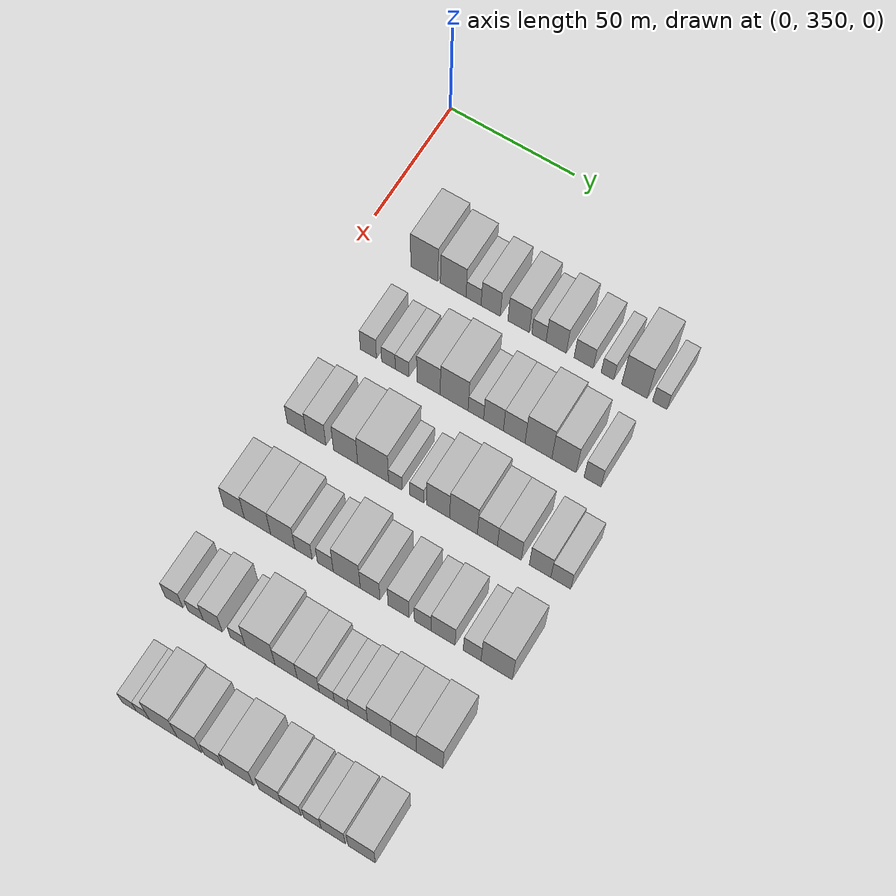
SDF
<sdf version="1.6">
 <world name="default">
  <model name="building_96">
   <static>1</static>
   <pose>50.0000 376.0835 0 0.000000 0.000000 0.000000</pose>
   <link name="link">
    <pose>0 0 12.00 0 0 0</pose>
    <collision name="collision"><geometry><box><size>20.0000 10.8142 24.0000</size></box></geometry></collision>
    <visual name="visual">
     <cast_shadows>0</cast_shadows>
     <geometry><box><size>20.0000 10.8142 24.0000</size></box></geometry>
     <material>
      <script>
       <uri>model://HANNAS_wall/materials/scripts</uri>
       <uri>model://HANNAS_wall/materials/textures</uri>
       <name>vrc/HANNAS_wall</name>
      </script>
     </material>
    </visual>
   </link>
  </model>
  <model name="building_97">
   <static>1</static>
   <pose>50.0000 387.5671 0 0.000000 0.000000 0.000000</pose>
   <link name="link">
    <pose>0 0 10.50 0 0 0</pose>
    <collision name="collision"><geometry><box><size>20.0000 10.1531 21.0000</size></box></geometry></collision>
    <visual name="visual">
     <cast_shadows>0</cast_shadows>
     <geometry><box><size>20.0000 10.1531 21.0000</size></box></geometry>
     <material>
      <script>
       <uri>model://HANNAS_wall/materials/scripts</uri>
       <uri>model://HANNAS_wall/materials/textures</uri>
       <name>vrc/HANNAS_wall</name>
      </script>
     </material>
    </visual>
   </link>
  </model>
  <model name="building_98">
   <static>1</static>
   <pose>50.0000 395.6149 0 0.000000 0.000000 0.000000</pose>
   <link name="link">
    <pose>0 0 6.00 0 0 0</pose>
    <collision name="collision"><geometry><box><size>20.0000 5.9425 12.0000</size></box></geometry></collision>
    <visual name="visual">
     <cast_shadows>0</cast_shadows>
     <geometry><box><size>20.0000 5.9425 12.0000</size></box></geometry>
     <material>
      <script>
       <uri>model://HANNAS_wall/materials/scripts</uri>
       <uri>model://HANNAS_wall/materials/textures</uri>
       <name>vrc/HANNAS_wall</name>
      </script>
     </material>
    </visual>
   </link>
  </model>
  <model name="building_99">
   <static>1</static>
   <pose>50.0000 402.3508 0 0.000000 0.000000 0.000000</pose>
   <link name="link">
    <pose>0 0 9.00 0 0 0</pose>
    <collision name="collision"><geometry><box><size>20.0000 7.5293 18.0000</size></box></geometry></collision>
    <visual name="visual">
     <cast_shadows>0</cast_shadows>
     <geometry><box><size>20.0000 7.5293 18.0000</size></box></geometry>
     <material>
      <script>
       <uri>model://HANNAS_wall/materials/scripts</uri>
       <uri>model://HANNAS_wall/materials/textures</uri>
       <name>vrc/HANNAS_wall</name>
      </script>
     </material>
    </visual>
   </link>
  </model>
  <model name="building_100">
   <static>1</static>
   <pose>50.0000 413.2774 0 0.000000 0.000000 0.000000</pose>
   <link name="link">
    <pose>0 0 9.00 0 0 0</pose>
    <collision name="collision"><geometry><box><size>20.0000 8.3240 18.0000</size></box></geometry></collision>
    <visual name="visual">
     <cast_shadows>0</cast_shadows>
     <geometry><box><size>20.0000 8.3240 18.0000</size></box></geometry>
     <material>
      <script>
       <uri>model://HANNAS_wall/materials/scripts</uri>
       <uri>model://HANNAS_wall/materials/textures</uri>
       <name>vrc/HANNAS_wall</name>
      </script>
     </material>
    </visual>
   </link>
  </model>
  <model name="building_101">
   <static>1</static>
   <pose>50.0000 421.2077 0 0.000000 0.000000 0.000000</pose>
   <link name="link">
    <pose>0 0 6.00 0 0 0</pose>
    <collision name="collision"><geometry><box><size>20.0000 5.5365 12.0000</size></box></geometry></collision>
    <visual name="visual">
     <cast_shadows>0</cast_shadows>
     <geometry><box><size>20.0000 5.5365 12.0000</size></box></geometry>
     <material>
      <script>
       <uri>model://HANNAS_wall/materials/scripts</uri>
       <uri>model://HANNAS_wall/materials/textures</uri>
       <name>vrc/HANNAS_wall</name>
      </script>
     </material>
    </visual>
   </link>
  </model>
  <model name="building_102">
   <static>1</static>
   <pose>50.0000 427.9017 0 0.000000 0.000000 0.000000</pose>
   <link name="link">
    <pose>0 0 9.00 0 0 0</pose>
    <collision name="collision"><geometry><box><size>20.0000 7.8514 18.0000</size></box></geometry></collision>
    <visual name="visual">
     <cast_shadows>0</cast_shadows>
     <geometry><box><size>20.0000 7.8514 18.0000</size></box></geometry>
     <material>
      <script>
       <uri>model://HANNAS_wall/materials/scripts</uri>
       <uri>model://HANNAS_wall/materials/textures</uri>
       <name>vrc/HANNAS_wall</name>
      </script>
     </material>
    </visual>
   </link>
  </model>
  <model name="building_103">
   <static>1</static>
   <pose>50.0000 438.5098 0 0.000000 0.000000 0.000000</pose>
   <link name="link">
    <pose>0 0 7.50 0 0 0</pose>
    <collision name="collision"><geometry><box><size>20.0000 7.3649 15.0000</size></box></geometry></collision>
    <visual name="visual">
     <cast_shadows>0</cast_shadows>
     <geometry><box><size>20.0000 7.3649 15.0000</size></box></geometry>
     <material>
      <script>
       <uri>model://HANNAS_wall/materials/scripts</uri>
       <uri>model://HANNAS_wall/materials/textures</uri>
       <name>vrc/HANNAS_wall</name>
      </script>
     </material>
    </visual>
   </link>
  </model>
  <model name="building_104">
   <static>1</static>
   <pose>50.0000 447.6122 0 0.000000 0.000000 0.000000</pose>
   <link name="link">
    <pose>0 0 6.00 0 0 0</pose>
    <collision name="collision"><geometry><box><size>20.0000 4.8399 12.0000</size></box></geometry></collision>
    <visual name="visual">
     <cast_shadows>0</cast_shadows>
     <geometry><box><size>20.0000 4.8399 12.0000</size></box></geometry>
     <material>
      <script>
       <uri>model://HANNAS_wall/materials/scripts</uri>
       <uri>model://HANNAS_wall/materials/textures</uri>
       <name>vrc/HANNAS_wall</name>
      </script>
     </material>
    </visual>
   </link>
  </model>
  <model name="building_105">
   <static>1</static>
   <pose>50.0000 457.8924 0 0.000000 0.000000 0.000000</pose>
   <link name="link">
    <pose>0 0 12.00 0 0 0</pose>
    <collision name="collision"><geometry><box><size>20.0000 9.7205 24.0000</size></box></geometry></collision>
    <visual name="visual">
     <cast_shadows>0</cast_shadows>
     <geometry><box><size>20.0000 9.7205 24.0000</size></box></geometry>
     <material>
      <script>
       <uri>model://HANNAS_wall/materials/scripts</uri>
       <uri>model://HANNAS_wall/materials/textures</uri>
       <name>vrc/HANNAS_wall</name>
      </script>
     </material>
    </visual>
   </link>
  </model>
  <model name="building_106">
   <static>1</static>
   <pose>50.0000 467.4901 0 0.000000 0.000000 0.000000</pose>
   <link name="link">
    <pose>0 0 6.00 0 0 0</pose>
    <collision name="collision"><geometry><box><size>20.0000 5.4749 12.0000</size></box></geometry></collision>
    <visual name="visual">
     <cast_shadows>0</cast_shadows>
     <geometry><box><size>20.0000 5.4749 12.0000</size></box></geometry>
     <material>
      <script>
       <uri>model://HANNAS_wall/materials/scripts</uri>
       <uri>model://HANNAS_wall/materials/textures</uri>
       <name>vrc/HANNAS_wall</name>
      </script>
     </material>
    </visual>
   </link>
  </model>
  <model name="building_225">
   <static>1</static>
   <pose>85.0000 375.8583 0 0.000000 0.000000 0.000000</pose>
   <link name="link">
    <pose>0 0 7.50 0 0 0</pose>
    <collision name="collision"><geometry><box><size>20.0000 6.3888 15.0000</size></box></geometry></collision>
    <visual name="visual">
     <cast_shadows>0</cast_shadows>
     <geometry><box><size>20.0000 6.3888 15.0000</size></box></geometry>
     <material>
      <script>
       <uri>model://HANNAS_wall/materials/scripts</uri>
       <uri>model://HANNAS_wall/materials/textures</uri>
       <name>vrc/HANNAS_wall</name>
      </script>
     </material>
    </visual>
   </link>
  </model>
  <model name="building_226">
   <static>1</static>
   <pose>85.0000 383.7340 0 0.000000 0.000000 0.000000</pose>
   <link name="link">
    <pose>0 0 6.00 0 0 0</pose>
    <collision name="collision"><geometry><box><size>20.0000 5.3626 12.0000</size></box></geometry></collision>
    <visual name="visual">
     <cast_shadows>0</cast_shadows>
     <geometry><box><size>20.0000 5.3626 12.0000</size></box></geometry>
     <material>
      <script>
       <uri>model://HANNAS_wall/materials/scripts</uri>
       <uri>model://HANNAS_wall/materials/textures</uri>
       <name>vrc/HANNAS_wall</name>
      </script>
     </material>
    </visual>
   </link>
  </model>
  <model name="building_227">
   <static>1</static>
   <pose>85.0000 389.1077 0 0.000000 0.000000 0.000000</pose>
   <link name="link">
    <pose>0 0 6.00 0 0 0</pose>
    <collision name="collision"><geometry><box><size>20.0000 5.3848 12.0000</size></box></geometry></collision>
    <visual name="visual">
     <cast_shadows>0</cast_shadows>
     <geometry><box><size>20.0000 5.3848 12.0000</size></box></geometry>
     <material>
      <script>
       <uri>model://HANNAS_wall/materials/scripts</uri>
       <uri>model://HANNAS_wall/materials/textures</uri>
       <name>vrc/HANNAS_wall</name>
      </script>
     </material>
    </visual>
   </link>
  </model>
  <model name="building_228">
   <static>1</static>
   <pose>85.0000 399.3558 0 0.000000 0.000000 0.000000</pose>
   <link name="link">
    <pose>0 0 10.50 0 0 0</pose>
    <collision name="collision"><geometry><box><size>20.0000 9.1113 21.0000</size></box></geometry></collision>
    <visual name="visual">
     <cast_shadows>0</cast_shadows>
     <geometry><box><size>20.0000 9.1113 21.0000</size></box></geometry>
     <material>
      <script>
       <uri>model://HANNAS_wall/materials/scripts</uri>
       <uri>model://HANNAS_wall/materials/textures</uri>
       <name>vrc/HANNAS_wall</name>
      </script>
     </material>
    </visual>
   </link>
  </model>
  <model name="building_229">
   <static>1</static>
   <pose>85.0000 409.3159 0 0.000000 0.000000 0.000000</pose>
   <link name="link">
    <pose>0 0 12.00 0 0 0</pose>
    <collision name="collision"><geometry><box><size>20.0000 10.8091 24.0000</size></box></geometry></collision>
    <visual name="visual">
     <cast_shadows>0</cast_shadows>
     <geometry><box><size>20.0000 10.8091 24.0000</size></box></geometry>
     <material>
      <script>
       <uri>model://HANNAS_wall/materials/scripts</uri>
       <uri>model://HANNAS_wall/materials/textures</uri>
       <name>vrc/HANNAS_wall</name>
      </script>
     </material>
    </visual>
   </link>
  </model>
  <model name="building_230">
   <static>1</static>
   <pose>85.0000 417.7112 0 0.000000 0.000000 0.000000</pose>
   <link name="link">
    <pose>0 0 6.00 0 0 0</pose>
    <collision name="collision"><geometry><box><size>20.0000 5.9814 12.0000</size></box></geometry></collision>
    <visual name="visual">
     <cast_shadows>0</cast_shadows>
     <geometry><box><size>20.0000 5.9814 12.0000</size></box></geometry>
     <material>
      <script>
       <uri>model://HANNAS_wall/materials/scripts</uri>
       <uri>model://HANNAS_wall/materials/textures</uri>
       <name>vrc/HANNAS_wall</name>
      </script>
     </material>
    </visual>
   </link>
  </model>
  <model name="building_231">
   <static>1</static>
   <pose>85.0000 424.4865 0 0.000000 0.000000 0.000000</pose>
   <link name="link">
    <pose>0 0 9.00 0 0 0</pose>
    <collision name="collision"><geometry><box><size>20.0000 7.5693 18.0000</size></box></geometry></collision>
    <visual name="visual">
     <cast_shadows>0</cast_shadows>
     <geometry><box><size>20.0000 7.5693 18.0000</size></box></geometry>
     <material>
      <script>
       <uri>model://HANNAS_wall/materials/scripts</uri>
       <uri>model://HANNAS_wall/materials/textures</uri>
       <name>vrc/HANNAS_wall</name>
      </script>
     </material>
    </visual>
   </link>
  </model>
  <model name="building_232">
   <static>1</static>
   <pose>85.0000 432.3930 0 0.000000 0.000000 0.000000</pose>
   <link name="link">
    <pose>0 0 9.00 0 0 0</pose>
    <collision name="collision"><geometry><box><size>20.0000 8.2436 18.0000</size></box></geometry></collision>
    <visual name="visual">
     <cast_shadows>0</cast_shadows>
     <geometry><box><size>20.0000 8.2436 18.0000</size></box></geometry>
     <material>
      <script>
       <uri>model://HANNAS_wall/materials/scripts</uri>
       <uri>model://HANNAS_wall/materials/textures</uri>
       <name>vrc/HANNAS_wall</name>
      </script>
     </material>
    </visual>
   </link>
  </model>
  <model name="building_233">
   <static>1</static>
   <pose>85.0000 441.6112 0 0.000000 0.000000 0.000000</pose>
   <link name="link">
    <pose>0 0 12.00 0 0 0</pose>
    <collision name="collision"><geometry><box><size>20.0000 10.1927 24.0000</size></box></geometry></collision>
    <visual name="visual">
     <cast_shadows>0</cast_shadows>
     <geometry><box><size>20.0000 10.1927 24.0000</size></box></geometry>
     <material>
      <script>
       <uri>model://HANNAS_wall/materials/scripts</uri>
       <uri>model://HANNAS_wall/materials/textures</uri>
       <name>vrc/HANNAS_wall</name>
      </script>
     </material>
    </visual>
   </link>
  </model>
  <model name="building_234">
   <static>1</static>
   <pose>85.0000 451.2798 0 0.000000 0.000000 0.000000</pose>
   <link name="link">
    <pose>0 0 10.50 0 0 0</pose>
    <collision name="collision"><geometry><box><size>20.0000 9.1446 21.0000</size></box></geometry></collision>
    <visual name="visual">
     <cast_shadows>0</cast_shadows>
     <geometry><box><size>20.0000 9.1446 21.0000</size></box></geometry>
     <material>
      <script>
       <uri>model://HANNAS_wall/materials/scripts</uri>
       <uri>model://HANNAS_wall/materials/textures</uri>
       <name>vrc/HANNAS_wall</name>
      </script>
     </material>
    </visual>
   </link>
  </model>
  <model name="building_235">
   <static>1</static>
   <pose>85.0000 462.0244 0 0.000000 0.000000 0.000000</pose>
   <link name="link">
    <pose>0 0 7.50 0 0 0</pose>
    <collision name="collision"><geometry><box><size>20.0000 6.3446 15.0000</size></box></geometry></collision>
    <visual name="visual">
     <cast_shadows>0</cast_shadows>
     <geometry><box><size>20.0000 6.3446 15.0000</size></box></geometry>
     <material>
      <script>
       <uri>model://HANNAS_wall/materials/scripts</uri>
       <uri>model://HANNAS_wall/materials/textures</uri>
       <name>vrc/HANNAS_wall</name>
      </script>
     </material>
    </visual>
   </link>
  </model>
  <model name="building_355">
   <static>1</static>
   <pose>120.0000 370.1527 0 0.000000 0.000000 0.000000</pose>
   <link name="link">
    <pose>0 0 7.50 0 0 0</pose>
    <collision name="collision"><geometry><box><size>20.0000 7.3918 15.0000</size></box></geometry></collision>
    <visual name="visual">
     <cast_shadows>0</cast_shadows>
     <geometry><box><size>20.0000 7.3918 15.0000</size></box></geometry>
     <material>
      <script>
       <uri>model://HANNAS_wall/materials/scripts</uri>
       <uri>model://HANNAS_wall/materials/textures</uri>
       <name>vrc/HANNAS_wall</name>
      </script>
     </material>
    </visual>
   </link>
  </model>
  <model name="building_356">
   <static>1</static>
   <pose>120.0000 377.7214 0 0.000000 0.000000 0.000000</pose>
   <link name="link">
    <pose>0 0 9.00 0 0 0</pose>
    <collision name="collision"><geometry><box><size>20.0000 7.7455 18.0000</size></box></geometry></collision>
    <visual name="visual">
     <cast_shadows>0</cast_shadows>
     <geometry><box><size>20.0000 7.7455 18.0000</size></box></geometry>
     <material>
      <script>
       <uri>model://HANNAS_wall/materials/scripts</uri>
       <uri>model://HANNAS_wall/materials/textures</uri>
       <name>vrc/HANNAS_wall</name>
      </script>
     </material>
    </visual>
   </link>
  </model>
  <model name="building_357">
   <static>1</static>
   <pose>120.0000 389.2720 0 0.000000 0.000000 0.000000</pose>
   <link name="link">
    <pose>0 0 10.50 0 0 0</pose>
    <collision name="collision"><geometry><box><size>20.0000 9.3556 21.0000</size></box></geometry></collision>
    <visual name="visual">
     <cast_shadows>0</cast_shadows>
     <geometry><box><size>20.0000 9.3556 21.0000</size></box></geometry>
     <material>
      <script>
       <uri>model://HANNAS_wall/materials/scripts</uri>
       <uri>model://HANNAS_wall/materials/textures</uri>
       <name>vrc/HANNAS_wall</name>
      </script>
     </material>
    </visual>
   </link>
  </model>
  <model name="building_358">
   <static>1</static>
   <pose>120.0000 399.8776 0 0.000000 0.000000 0.000000</pose>
   <link name="link">
    <pose>0 0 12.00 0 0 0</pose>
    <collision name="collision"><geometry><box><size>20.0000 11.8556 24.0000</size></box></geometry></collision>
    <visual name="visual">
     <cast_shadows>0</cast_shadows>
     <geometry><box><size>20.0000 11.8556 24.0000</size></box></geometry>
     <material>
      <script>
       <uri>model://HANNAS_wall/materials/scripts</uri>
       <uri>model://HANNAS_wall/materials/textures</uri>
       <name>vrc/HANNAS_wall</name>
      </script>
     </material>
    </visual>
   </link>
  </model>
  <model name="building_359">
   <static>1</static>
   <pose>120.0000 408.3863 0 0.000000 0.000000 0.000000</pose>
   <link name="link">
    <pose>0 0 6.00 0 0 0</pose>
    <collision name="collision"><geometry><box><size>20.0000 5.1617 12.0000</size></box></geometry></collision>
    <visual name="visual">
     <cast_shadows>0</cast_shadows>
     <geometry><box><size>20.0000 5.1617 12.0000</size></box></geometry>
     <material>
      <script>
       <uri>model://HANNAS_wall/materials/scripts</uri>
       <uri>model://HANNAS_wall/materials/textures</uri>
       <name>vrc/HANNAS_wall</name>
      </script>
     </material>
    </visual>
   </link>
  </model>
  <model name="building_360">
   <static>1</static>
   <pose>120.0000 416.6262 0 0.000000 0.000000 0.000000</pose>
   <link name="link">
    <pose>0 0 6.00 0 0 0</pose>
    <collision name="collision"><geometry><box><size>20.0000 5.3180 12.0000</size></box></geometry></collision>
    <visual name="visual">
     <cast_shadows>0</cast_shadows>
     <geometry><box><size>20.0000 5.3180 12.0000</size></box></geometry>
     <material>
      <script>
       <uri>model://HANNAS_wall/materials/scripts</uri>
       <uri>model://HANNAS_wall/materials/textures</uri>
       <name>vrc/HANNAS_wall</name>
      </script>
     </material>
    </visual>
   </link>
  </model>
  <model name="building_361">
   <static>1</static>
   <pose>120.0000 424.6590 0 0.000000 0.000000 0.000000</pose>
   <link name="link">
    <pose>0 0 10.50 0 0 0</pose>
    <collision name="collision"><geometry><box><size>20.0000 8.7477 21.0000</size></box></geometry></collision>
    <visual name="visual">
     <cast_shadows>0</cast_shadows>
     <geometry><box><size>20.0000 8.7477 21.0000</size></box></geometry>
     <material>
      <script>
       <uri>model://HANNAS_wall/materials/scripts</uri>
       <uri>model://HANNAS_wall/materials/textures</uri>
       <name>vrc/HANNAS_wall</name>
      </script>
     </material>
    </visual>
   </link>
  </model>
  <model name="building_362">
   <static>1</static>
   <pose>120.0000 434.2619 0 0.000000 0.000000 0.000000</pose>
   <link name="link">
    <pose>0 0 12.00 0 0 0</pose>
    <collision name="collision"><geometry><box><size>20.0000 10.4581 24.0000</size></box></geometry></collision>
    <visual name="visual">
     <cast_shadows>0</cast_shadows>
     <geometry><box><size>20.0000 10.4581 24.0000</size></box></geometry>
     <material>
      <script>
       <uri>model://HANNAS_wall/materials/scripts</uri>
       <uri>model://HANNAS_wall/materials/textures</uri>
       <name>vrc/HANNAS_wall</name>
      </script>
     </material>
    </visual>
   </link>
  </model>
  <model name="building_363">
   <static>1</static>
   <pose>120.0000 443.2459 0 0.000000 0.000000 0.000000</pose>
   <link name="link">
    <pose>0 0 9.00 0 0 0</pose>
    <collision name="collision"><geometry><box><size>20.0000 7.5100 18.0000</size></box></geometry></collision>
    <visual name="visual">
     <cast_shadows>0</cast_shadows>
     <geometry><box><size>20.0000 7.5100 18.0000</size></box></geometry>
     <material>
      <script>
       <uri>model://HANNAS_wall/materials/scripts</uri>
       <uri>model://HANNAS_wall/materials/textures</uri>
       <name>vrc/HANNAS_wall</name>
      </script>
     </material>
    </visual>
   </link>
  </model>
  <model name="building_364">
   <static>1</static>
   <pose>120.0000 451.4324 0 0.000000 0.000000 0.000000</pose>
   <link name="link">
    <pose>0 0 9.00 0 0 0</pose>
    <collision name="collision"><geometry><box><size>20.0000 8.8629 18.0000</size></box></geometry></collision>
    <visual name="visual">
     <cast_shadows>0</cast_shadows>
     <geometry><box><size>20.0000 8.8629 18.0000</size></box></geometry>
     <material>
      <script>
       <uri>model://HANNAS_wall/materials/scripts</uri>
       <uri>model://HANNAS_wall/materials/textures</uri>
       <name>vrc/HANNAS_wall</name>
      </script>
     </material>
    </visual>
   </link>
  </model>
  <model name="building_365">
   <static>1</static>
   <pose>120.0000 462.8390 0 0.000000 0.000000 0.000000</pose>
   <link name="link">
    <pose>0 0 9.00 0 0 0</pose>
    <collision name="collision"><geometry><box><size>20.0000 7.9503 18.0000</size></box></geometry></collision>
    <visual name="visual">
     <cast_shadows>0</cast_shadows>
     <geometry><box><size>20.0000 7.9503 18.0000</size></box></geometry>
     <material>
      <script>
       <uri>model://HANNAS_wall/materials/scripts</uri>
       <uri>model://HANNAS_wall/materials/textures</uri>
       <name>vrc/HANNAS_wall</name>
      </script>
     </material>
    </visual>
   </link>
  </model>
  <model name="building_366">
   <static>1</static>
   <pose>120.0000 470.4662 0 0.000000 0.000000 0.000000</pose>
   <link name="link">
    <pose>0 0 7.50 0 0 0</pose>
    <collision name="collision"><geometry><box><size>20.0000 7.3043 15.0000</size></box></geometry></collision>
    <visual name="visual">
     <cast_shadows>0</cast_shadows>
     <geometry><box><size>20.0000 7.3043 15.0000</size></box></geometry>
     <material>
      <script>
       <uri>model://HANNAS_wall/materials/scripts</uri>
       <uri>model://HANNAS_wall/materials/textures</uri>
       <name>vrc/HANNAS_wall</name>
      </script>
     </material>
    </visual>
   </link>
  </model>
  <model name="building_487">
   <static>1</static>
   <pose>155.0000 368.9760 0 0.000000 0.000000 0.000000</pose>
   <link name="link">
    <pose>0 0 9.00 0 0 0</pose>
    <collision name="collision"><geometry><box><size>20.0000 8.0599 18.0000</size></box></geometry></collision>
    <visual name="visual">
     <cast_shadows>0</cast_shadows>
     <geometry><box><size>20.0000 8.0599 18.0000</size></box></geometry>
     <material>
      <script>
       <uri>model://HANNAS_wall/materials/scripts</uri>
       <uri>model://HANNAS_wall/materials/textures</uri>
       <name>vrc/HANNAS_wall</name>
      </script>
     </material>
    </visual>
   </link>
  </model>
  <model name="building_488">
   <static>1</static>
   <pose>155.0000 378.0595 0 0.000000 0.000000 0.000000</pose>
   <link name="link">
    <pose>0 0 10.50 0 0 0</pose>
    <collision name="collision"><geometry><box><size>20.0000 10.1070 21.0000</size></box></geometry></collision>
    <visual name="visual">
     <cast_shadows>0</cast_shadows>
     <geometry><box><size>20.0000 10.1070 21.0000</size></box></geometry>
     <material>
      <script>
       <uri>model://HANNAS_wall/materials/scripts</uri>
       <uri>model://HANNAS_wall/materials/textures</uri>
       <name>vrc/HANNAS_wall</name>
      </script>
     </material>
    </visual>
   </link>
  </model>
  <model name="building_489">
   <static>1</static>
   <pose>155.0000 387.7914 0 0.000000 0.000000 0.000000</pose>
   <link name="link">
    <pose>0 0 10.50 0 0 0</pose>
    <collision name="collision"><geometry><box><size>20.0000 9.3568 21.0000</size></box></geometry></collision>
    <visual name="visual">
     <cast_shadows>0</cast_shadows>
     <geometry><box><size>20.0000 9.3568 21.0000</size></box></geometry>
     <material>
      <script>
       <uri>model://HANNAS_wall/materials/scripts</uri>
       <uri>model://HANNAS_wall/materials/textures</uri>
       <name>vrc/HANNAS_wall</name>
      </script>
     </material>
    </visual>
   </link>
  </model>
  <model name="building_490">
   <static>1</static>
   <pose>155.0000 395.7592 0 0.000000 0.000000 0.000000</pose>
   <link name="link">
    <pose>0 0 7.50 0 0 0</pose>
    <collision name="collision"><geometry><box><size>20.0000 6.5789 15.0000</size></box></geometry></collision>
    <visual name="visual">
     <cast_shadows>0</cast_shadows>
     <geometry><box><size>20.0000 6.5789 15.0000</size></box></geometry>
     <material>
      <script>
       <uri>model://HANNAS_wall/materials/scripts</uri>
       <uri>model://HANNAS_wall/materials/textures</uri>
       <name>vrc/HANNAS_wall</name>
      </script>
     </material>
    </visual>
   </link>
  </model>
  <model name="building_491">
   <static>1</static>
   <pose>155.0000 404.0510 0 0.000000 0.000000 0.000000</pose>
   <link name="link">
    <pose>0 0 7.50 0 0 0</pose>
    <collision name="collision"><geometry><box><size>20.0000 6.0047 15.0000</size></box></geometry></collision>
    <visual name="visual">
     <cast_shadows>0</cast_shadows>
     <geometry><box><size>20.0000 6.0047 15.0000</size></box></geometry>
     <material>
      <script>
       <uri>model://HANNAS_wall/materials/scripts</uri>
       <uri>model://HANNAS_wall/materials/textures</uri>
       <name>vrc/HANNAS_wall</name>
      </script>
     </material>
    </visual>
   </link>
  </model>
  <model name="building_492">
   <static>1</static>
   <pose>155.0000 412.1472 0 0.000000 0.000000 0.000000</pose>
   <link name="link">
    <pose>0 0 12.00 0 0 0</pose>
    <collision name="collision"><geometry><box><size>20.0000 10.1876 24.0000</size></box></geometry></collision>
    <visual name="visual">
     <cast_shadows>0</cast_shadows>
     <geometry><box><size>20.0000 10.1876 24.0000</size></box></geometry>
     <material>
      <script>
       <uri>model://HANNAS_wall/materials/scripts</uri>
       <uri>model://HANNAS_wall/materials/textures</uri>
       <name>vrc/HANNAS_wall</name>
      </script>
     </material>
    </visual>
   </link>
  </model>
  <model name="building_493">
   <static>1</static>
   <pose>155.0000 420.9385 0 0.000000 0.000000 0.000000</pose>
   <link name="link">
    <pose>0 0 9.00 0 0 0</pose>
    <collision name="collision"><geometry><box><size>20.0000 7.3950 18.0000</size></box></geometry></collision>
    <visual name="visual">
     <cast_shadows>0</cast_shadows>
     <geometry><box><size>20.0000 7.3950 18.0000</size></box></geometry>
     <material>
      <script>
       <uri>model://HANNAS_wall/materials/scripts</uri>
       <uri>model://HANNAS_wall/materials/textures</uri>
       <name>vrc/HANNAS_wall</name>
      </script>
     </material>
    </visual>
   </link>
  </model>
  <model name="building_494">
   <static>1</static>
   <pose>155.0000 431.5492 0 0.000000 0.000000 0.000000</pose>
   <link name="link">
    <pose>0 0 9.00 0 0 0</pose>
    <collision name="collision"><geometry><box><size>20.0000 7.8264 18.0000</size></box></geometry></collision>
    <visual name="visual">
     <cast_shadows>0</cast_shadows>
     <geometry><box><size>20.0000 7.8264 18.0000</size></box></geometry>
     <material>
      <script>
       <uri>model://HANNAS_wall/materials/scripts</uri>
       <uri>model://HANNAS_wall/materials/textures</uri>
       <name>vrc/HANNAS_wall</name>
      </script>
     </material>
    </visual>
   </link>
  </model>
  <model name="building_495">
   <static>1</static>
   <pose>155.0000 440.5636 0 0.000000 0.000000 0.000000</pose>
   <link name="link">
    <pose>0 0 7.50 0 0 0</pose>
    <collision name="collision"><geometry><box><size>20.0000 6.2023 15.0000</size></box></geometry></collision>
    <visual name="visual">
     <cast_shadows>0</cast_shadows>
     <geometry><box><size>20.0000 6.2023 15.0000</size></box></geometry>
     <material>
      <script>
       <uri>model://HANNAS_wall/materials/scripts</uri>
       <uri>model://HANNAS_wall/materials/textures</uri>
       <name>vrc/HANNAS_wall</name>
      </script>
     </material>
    </visual>
   </link>
  </model>
  <model name="building_496">
   <static>1</static>
   <pose>155.0000 448.0806 0 0.000000 0.000000 0.000000</pose>
   <link name="link">
    <pose>0 0 9.00 0 0 0</pose>
    <collision name="collision"><geometry><box><size>20.0000 8.8317 18.0000</size></box></geometry></collision>
    <visual name="visual">
     <cast_shadows>0</cast_shadows>
     <geometry><box><size>20.0000 8.8317 18.0000</size></box></geometry>
     <material>
      <script>
       <uri>model://HANNAS_wall/materials/scripts</uri>
       <uri>model://HANNAS_wall/materials/textures</uri>
       <name>vrc/HANNAS_wall</name>
      </script>
     </material>
    </visual>
   </link>
  </model>
  <model name="building_497">
   <static>1</static>
   <pose>155.0000 458.7452 0 0.000000 0.000000 0.000000</pose>
   <link name="link">
    <pose>0 0 7.50 0 0 0</pose>
    <collision name="collision"><geometry><box><size>20.0000 6.4974 15.0000</size></box></geometry></collision>
    <visual name="visual">
     <cast_shadows>0</cast_shadows>
     <geometry><box><size>20.0000 6.4974 15.0000</size></box></geometry>
     <material>
      <script>
       <uri>model://HANNAS_wall/materials/scripts</uri>
       <uri>model://HANNAS_wall/materials/textures</uri>
       <name>vrc/HANNAS_wall</name>
      </script>
     </material>
    </visual>
   </link>
  </model>
  <model name="building_498">
   <static>1</static>
   <pose>155.0000 467.6896 0 0.000000 0.000000 0.000000</pose>
   <link name="link">
    <pose>0 0 12.00 0 0 0</pose>
    <collision name="collision"><geometry><box><size>20.0000 11.3913 24.0000</size></box></geometry></collision>
    <visual name="visual">
     <cast_shadows>0</cast_shadows>
     <geometry><box><size>20.0000 11.3913 24.0000</size></box></geometry>
     <material>
      <script>
       <uri>model://HANNAS_wall/materials/scripts</uri>
       <uri>model://HANNAS_wall/materials/textures</uri>
       <name>vrc/HANNAS_wall</name>
      </script>
     </material>
    </visual>
   </link>
  </model>
  <model name="building_617">
   <static>1</static>
   <pose>190.0000 369.6605 0 0.000000 0.000000 0.000000</pose>
   <link name="link">
    <pose>0 0 7.50 0 0 0</pose>
    <collision name="collision"><geometry><box><size>20.0000 6.7773 15.0000</size></box></geometry></collision>
    <visual name="visual">
     <cast_shadows>0</cast_shadows>
     <geometry><box><size>20.0000 6.7773 15.0000</size></box></geometry>
     <material>
      <script>
       <uri>model://HANNAS_wall/materials/scripts</uri>
       <uri>model://HANNAS_wall/materials/textures</uri>
       <name>vrc/HANNAS_wall</name>
      </script>
     </material>
    </visual>
   </link>
  </model>
  <model name="building_618">
   <static>1</static>
   <pose>190.0000 377.9573 0 0.000000 0.000000 0.000000</pose>
   <link name="link">
    <pose>0 0 6.00 0 0 0</pose>
    <collision name="collision"><geometry><box><size>20.0000 5.8163 12.0000</size></box></geometry></collision>
    <visual name="visual">
     <cast_shadows>0</cast_shadows>
     <geometry><box><size>20.0000 5.8163 12.0000</size></box></geometry>
     <material>
      <script>
       <uri>model://HANNAS_wall/materials/scripts</uri>
       <uri>model://HANNAS_wall/materials/textures</uri>
       <name>vrc/HANNAS_wall</name>
      </script>
     </material>
    </visual>
   </link>
  </model>
  <model name="building_619">
   <static>1</static>
   <pose>190.0000 384.5036 0 0.000000 0.000000 0.000000</pose>
   <link name="link">
    <pose>0 0 9.00 0 0 0</pose>
    <collision name="collision"><geometry><box><size>20.0000 7.2762 18.0000</size></box></geometry></collision>
    <visual name="visual">
     <cast_shadows>0</cast_shadows>
     <geometry><box><size>20.0000 7.2762 18.0000</size></box></geometry>
     <material>
      <script>
       <uri>model://HANNAS_wall/materials/scripts</uri>
       <uri>model://HANNAS_wall/materials/textures</uri>
       <name>vrc/HANNAS_wall</name>
      </script>
     </material>
    </visual>
   </link>
  </model>
  <model name="building_620">
   <static>1</static>
   <pose>190.0000 393.9536 0 0.000000 0.000000 0.000000</pose>
   <link name="link">
    <pose>0 0 6.00 0 0 0</pose>
    <collision name="collision"><geometry><box><size>20.0000 5.6238 12.0000</size></box></geometry></collision>
    <visual name="visual">
     <cast_shadows>0</cast_shadows>
     <geometry><box><size>20.0000 5.6238 12.0000</size></box></geometry>
     <material>
      <script>
       <uri>model://HANNAS_wall/materials/scripts</uri>
       <uri>model://HANNAS_wall/materials/textures</uri>
       <name>vrc/HANNAS_wall</name>
      </script>
     </material>
    </visual>
   </link>
  </model>
  <model name="building_621">
   <static>1</static>
   <pose>190.0000 402.3611 0 0.000000 0.000000 0.000000</pose>
   <link name="link">
    <pose>0 0 12.00 0 0 0</pose>
    <collision name="collision"><geometry><box><size>20.0000 11.1912 24.0000</size></box></geometry></collision>
    <visual name="visual">
     <cast_shadows>0</cast_shadows>
     <geometry><box><size>20.0000 11.1912 24.0000</size></box></geometry>
     <material>
      <script>
       <uri>model://HANNAS_wall/materials/scripts</uri>
       <uri>model://HANNAS_wall/materials/textures</uri>
       <name>vrc/HANNAS_wall</name>
      </script>
     </material>
    </visual>
   </link>
  </model>
  <model name="building_622">
   <static>1</static>
   <pose>190.0000 412.0989 0 0.000000 0.000000 0.000000</pose>
   <link name="link">
    <pose>0 0 9.00 0 0 0</pose>
    <collision name="collision"><geometry><box><size>20.0000 8.2843 18.0000</size></box></geometry></collision>
    <visual name="visual">
     <cast_shadows>0</cast_shadows>
     <geometry><box><size>20.0000 8.2843 18.0000</size></box></geometry>
     <material>
      <script>
       <uri>model://HANNAS_wall/materials/scripts</uri>
       <uri>model://HANNAS_wall/materials/textures</uri>
       <name>vrc/HANNAS_wall</name>
      </script>
     </material>
    </visual>
   </link>
  </model>
  <model name="building_623">
   <static>1</static>
   <pose>190.0000 420.3530 0 0.000000 0.000000 0.000000</pose>
   <link name="link">
    <pose>0 0 9.00 0 0 0</pose>
    <collision name="collision"><geometry><box><size>20.0000 8.2240 18.0000</size></box></geometry></collision>
    <visual name="visual">
     <cast_shadows>0</cast_shadows>
     <geometry><box><size>20.0000 8.2240 18.0000</size></box></geometry>
     <material>
      <script>
       <uri>model://HANNAS_wall/materials/scripts</uri>
       <uri>model://HANNAS_wall/materials/textures</uri>
       <name>vrc/HANNAS_wall</name>
      </script>
     </material>
    </visual>
   </link>
  </model>
  <model name="building_624">
   <static>1</static>
   <pose>190.0000 427.2305 0 0.000000 0.000000 0.000000</pose>
   <link name="link">
    <pose>0 0 6.00 0 0 0</pose>
    <collision name="collision"><geometry><box><size>20.0000 5.5309 12.0000</size></box></geometry></collision>
    <visual name="visual">
     <cast_shadows>0</cast_shadows>
     <geometry><box><size>20.0000 5.5309 12.0000</size></box></geometry>
     <material>
      <script>
       <uri>model://HANNAS_wall/materials/scripts</uri>
       <uri>model://HANNAS_wall/materials/textures</uri>
       <name>vrc/HANNAS_wall</name>
      </script>
     </material>
    </visual>
   </link>
  </model>
  <model name="building_625">
   <static>1</static>
   <pose>190.0000 432.5921 0 0.000000 0.000000 0.000000</pose>
   <link name="link">
    <pose>0 0 6.00 0 0 0</pose>
    <collision name="collision"><geometry><box><size>20.0000 5.1923 12.0000</size></box></geometry></collision>
    <visual name="visual">
     <cast_shadows>0</cast_shadows>
     <geometry><box><size>20.0000 5.1923 12.0000</size></box></geometry>
     <material>
      <script>
       <uri>model://HANNAS_wall/materials/scripts</uri>
       <uri>model://HANNAS_wall/materials/textures</uri>
       <name>vrc/HANNAS_wall</name>
      </script>
     </material>
    </visual>
   </link>
  </model>
  <model name="building_626">
   <static>1</static>
   <pose>190.0000 438.6916 0 0.000000 0.000000 0.000000</pose>
   <link name="link">
    <pose>0 0 7.50 0 0 0</pose>
    <collision name="collision"><geometry><box><size>20.0000 7.0068 15.0000</size></box></geometry></collision>
    <visual name="visual">
     <cast_shadows>0</cast_shadows>
     <geometry><box><size>20.0000 7.0068 15.0000</size></box></geometry>
     <material>
      <script>
       <uri>model://HANNAS_wall/materials/scripts</uri>
       <uri>model://HANNAS_wall/materials/textures</uri>
       <name>vrc/HANNAS_wall</name>
      </script>
     </material>
    </visual>
   </link>
  </model>
  <model name="building_627">
   <static>1</static>
   <pose>190.0000 446.5083 0 0.000000 0.000000 0.000000</pose>
   <link name="link">
    <pose>0 0 10.50 0 0 0</pose>
    <collision name="collision"><geometry><box><size>20.0000 8.6265 21.0000</size></box></geometry></collision>
    <visual name="visual">
     <cast_shadows>0</cast_shadows>
     <geometry><box><size>20.0000 8.6265 21.0000</size></box></geometry>
     <material>
      <script>
       <uri>model://HANNAS_wall/materials/scripts</uri>
       <uri>model://HANNAS_wall/materials/textures</uri>
       <name>vrc/HANNAS_wall</name>
      </script>
     </material>
    </visual>
   </link>
  </model>
  <model name="building_628">
   <static>1</static>
   <pose>190.0000 455.3502 0 0.000000 0.000000 0.000000</pose>
   <link name="link">
    <pose>0 0 10.50 0 0 0</pose>
    <collision name="collision"><geometry><box><size>20.0000 9.0573 21.0000</size></box></geometry></collision>
    <visual name="visual">
     <cast_shadows>0</cast_shadows>
     <geometry><box><size>20.0000 9.0573 21.0000</size></box></geometry>
     <material>
      <script>
       <uri>model://HANNAS_wall/materials/scripts</uri>
       <uri>model://HANNAS_wall/materials/textures</uri>
       <name>vrc/HANNAS_wall</name>
      </script>
     </material>
    </visual>
   </link>
  </model>
  <model name="building_629">
   <static>1</static>
   <pose>190.0000 464.7052 0 0.000000 0.000000 0.000000</pose>
   <link name="link">
    <pose>0 0 12.00 0 0 0</pose>
    <collision name="collision"><geometry><box><size>20.0000 9.6526 24.0000</size></box></geometry></collision>
    <visual name="visual">
     <cast_shadows>0</cast_shadows>
     <geometry><box><size>20.0000 9.6526 24.0000</size></box></geometry>
     <material>
      <script>
       <uri>model://HANNAS_wall/materials/scripts</uri>
       <uri>model://HANNAS_wall/materials/textures</uri>
       <name>vrc/HANNAS_wall</name>
      </script>
     </material>
    </visual>
   </link>
  </model>
  <model name="building_748">
   <static>1</static>
   <pose>225.0000 376.9546 0 0.000000 0.000000 0.000000</pose>
   <link name="link">
    <pose>0 0 6.00 0 0 0</pose>
    <collision name="collision"><geometry><box><size>20.0000 5.4063 12.0000</size></box></geometry></collision>
    <visual name="visual">
     <cast_shadows>0</cast_shadows>
     <geometry><box><size>20.0000 5.4063 12.0000</size></box></geometry>
     <material>
      <script>
       <uri>model://HANNAS_wall/materials/scripts</uri>
       <uri>model://HANNAS_wall/materials/textures</uri>
       <name>vrc/HANNAS_wall</name>
      </script>
     </material>
    </visual>
   </link>
  </model>
  <model name="building_749">
   <static>1</static>
   <pose>225.0000 382.1310 0 0.000000 0.000000 0.000000</pose>
   <link name="link">
    <pose>0 0 6.00 0 0 0</pose>
    <collision name="collision"><geometry><box><size>20.0000 4.9465 12.0000</size></box></geometry></collision>
    <visual name="visual">
     <cast_shadows>0</cast_shadows>
     <geometry><box><size>20.0000 4.9465 12.0000</size></box></geometry>
     <material>
      <script>
       <uri>model://HANNAS_wall/materials/scripts</uri>
       <uri>model://HANNAS_wall/materials/textures</uri>
       <name>vrc/HANNAS_wall</name>
      </script>
     </material>
    </visual>
   </link>
  </model>
  <model name="building_750">
   <static>1</static>
   <pose>225.0000 389.8061 0 0.000000 0.000000 0.000000</pose>
   <link name="link">
    <pose>0 0 12.00 0 0 0</pose>
    <collision name="collision"><geometry><box><size>20.0000 10.4038 24.0000</size></box></geometry></collision>
    <visual name="visual">
     <cast_shadows>0</cast_shadows>
     <geometry><box><size>20.0000 10.4038 24.0000</size></box></geometry>
     <material>
      <script>
       <uri>model://HANNAS_wall/materials/scripts</uri>
       <uri>model://HANNAS_wall/materials/textures</uri>
       <name>vrc/HANNAS_wall</name>
      </script>
     </material>
    </visual>
   </link>
  </model>
  <model name="building_751">
   <static>1</static>
   <pose>225.0000 399.5192 0 0.000000 0.000000 0.000000</pose>
   <link name="link">
    <pose>0 0 10.50 0 0 0</pose>
    <collision name="collision"><geometry><box><size>20.0000 9.0223 21.0000</size></box></geometry></collision>
    <visual name="visual">
     <cast_shadows>0</cast_shadows>
     <geometry><box><size>20.0000 9.0223 21.0000</size></box></geometry>
     <material>
      <script>
       <uri>model://HANNAS_wall/materials/scripts</uri>
       <uri>model://HANNAS_wall/materials/textures</uri>
       <name>vrc/HANNAS_wall</name>
      </script>
     </material>
    </visual>
   </link>
  </model>
  <model name="building_752">
   <static>1</static>
   <pose>225.0000 408.4281 0 0.000000 0.000000 0.000000</pose>
   <link name="link">
    <pose>0 0 7.50 0 0 0</pose>
    <collision name="collision"><geometry><box><size>20.0000 6.7955 15.0000</size></box></geometry></collision>
    <visual name="visual">
     <cast_shadows>0</cast_shadows>
     <geometry><box><size>20.0000 6.7955 15.0000</size></box></geometry>
     <material>
      <script>
       <uri>model://HANNAS_wall/materials/scripts</uri>
       <uri>model://HANNAS_wall/materials/textures</uri>
       <name>vrc/HANNAS_wall</name>
      </script>
     </material>
    </visual>
   </link>
  </model>
  <model name="building_753">
   <static>1</static>
   <pose>225.0000 418.0687 0 0.000000 0.000000 0.000000</pose>
   <link name="link">
    <pose>0 0 10.50 0 0 0</pose>
    <collision name="collision"><geometry><box><size>20.0000 10.4857 21.0000</size></box></geometry></collision>
    <visual name="visual">
     <cast_shadows>0</cast_shadows>
     <geometry><box><size>20.0000 10.4857 21.0000</size></box></geometry>
     <material>
      <script>
       <uri>model://HANNAS_wall/materials/scripts</uri>
       <uri>model://HANNAS_wall/materials/textures</uri>
       <name>vrc/HANNAS_wall</name>
      </script>
     </material>
    </visual>
   </link>
  </model>
  <model name="building_754">
   <static>1</static>
   <pose>225.0000 429.3452 0 0.000000 0.000000 0.000000</pose>
   <link name="link">
    <pose>0 0 9.00 0 0 0</pose>
    <collision name="collision"><geometry><box><size>20.0000 8.0674 18.0000</size></box></geometry></collision>
    <visual name="visual">
     <cast_shadows>0</cast_shadows>
     <geometry><box><size>20.0000 8.0674 18.0000</size></box></geometry>
     <material>
      <script>
       <uri>model://HANNAS_wall/materials/scripts</uri>
       <uri>model://HANNAS_wall/materials/textures</uri>
       <name>vrc/HANNAS_wall</name>
      </script>
     </material>
    </visual>
   </link>
  </model>
  <model name="building_755">
   <static>1</static>
   <pose>225.0000 437.0044 0 0.000000 0.000000 0.000000</pose>
   <link name="link">
    <pose>0 0 7.50 0 0 0</pose>
    <collision name="collision"><geometry><box><size>20.0000 7.2509 15.0000</size></box></geometry></collision>
    <visual name="visual">
     <cast_shadows>0</cast_shadows>
     <geometry><box><size>20.0000 7.2509 15.0000</size></box></geometry>
     <material>
      <script>
       <uri>model://HANNAS_wall/materials/scripts</uri>
       <uri>model://HANNAS_wall/materials/textures</uri>
       <name>vrc/HANNAS_wall</name>
      </script>
     </material>
    </visual>
   </link>
  </model>
  <model name="building_756">
   <static>1</static>
   <pose>225.0000 444.7706 0 0.000000 0.000000 0.000000</pose>
   <link name="link">
    <pose>0 0 7.50 0 0 0</pose>
    <collision name="collision"><geometry><box><size>20.0000 6.2815 15.0000</size></box></geometry></collision>
    <visual name="visual">
     <cast_shadows>0</cast_shadows>
     <geometry><box><size>20.0000 6.2815 15.0000</size></box></geometry>
     <material>
      <script>
       <uri>model://HANNAS_wall/materials/scripts</uri>
       <uri>model://HANNAS_wall/materials/textures</uri>
       <name>vrc/HANNAS_wall</name>
      </script>
     </material>
    </visual>
   </link>
  </model>
  <model name="building_757">
   <static>1</static>
   <pose>225.0000 452.2127 0 0.000000 0.000000 0.000000</pose>
   <link name="link">
    <pose>0 0 9.00 0 0 0</pose>
    <collision name="collision"><geometry><box><size>20.0000 8.6027 18.0000</size></box></geometry></collision>
    <visual name="visual">
     <cast_shadows>0</cast_shadows>
     <geometry><box><size>20.0000 8.6027 18.0000</size></box></geometry>
     <material>
      <script>
       <uri>model://HANNAS_wall/materials/scripts</uri>
       <uri>model://HANNAS_wall/materials/textures</uri>
       <name>vrc/HANNAS_wall</name>
      </script>
     </material>
    </visual>
   </link>
  </model>
  <model name="building_758">
   <static>1</static>
   <pose>225.0000 462.3743 0 0.000000 0.000000 0.000000</pose>
   <link name="link">
    <pose>0 0 10.50 0 0 0</pose>
    <collision name="collision"><geometry><box><size>20.0000 9.7204 21.0000</size></box></geometry></collision>
    <visual name="visual">
     <cast_shadows>0</cast_shadows>
     <geometry><box><size>20.0000 9.7204 21.0000</size></box></geometry>
     <material>
      <script>
       <uri>model://HANNAS_wall/materials/scripts</uri>
       <uri>model://HANNAS_wall/materials/textures</uri>
       <name>vrc/HANNAS_wall</name>
      </script>
     </material>
    </visual>
   </link>
  </model>
 </world>
</sdf>
